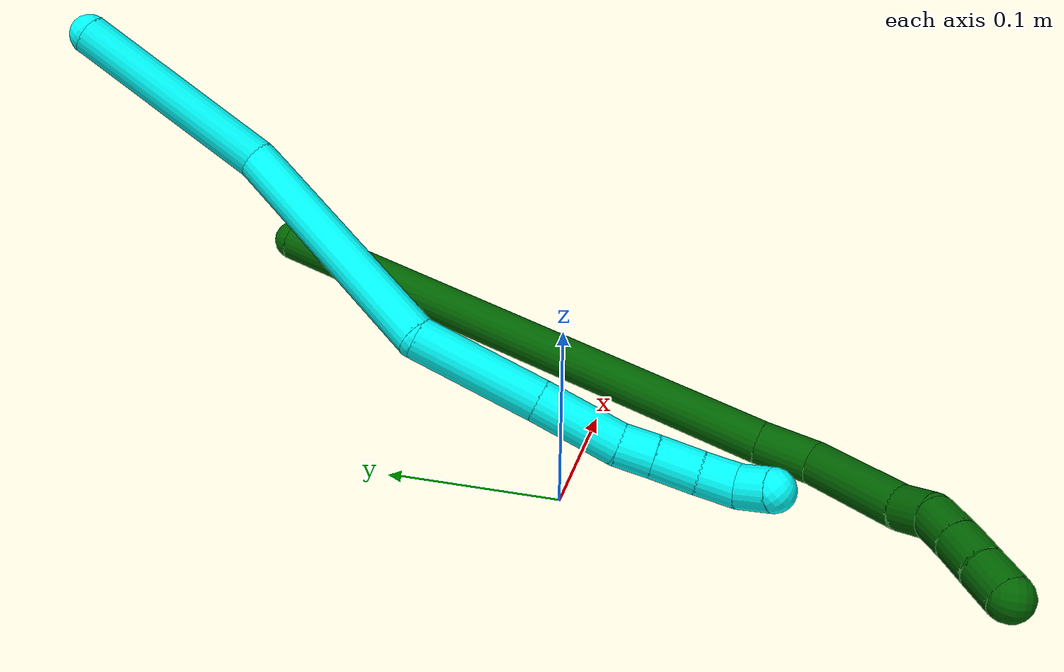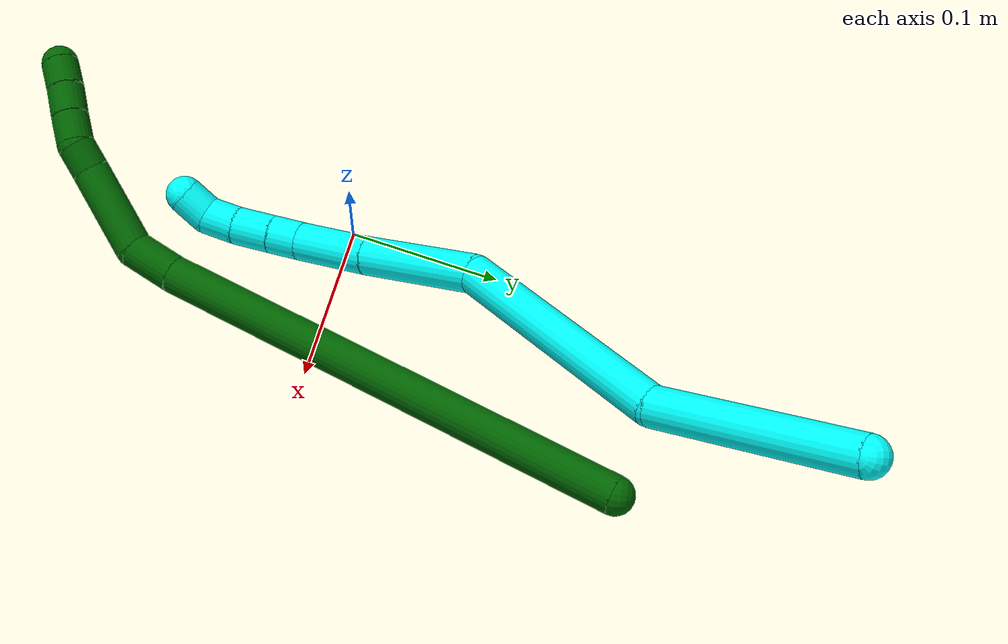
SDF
<sdf version="1.7">
 <world name="default">
  <model name="photoneo_s_sensor">
   <static>1</static>
   <pose>0 0 2 1.57079 1.57079 3.14159</pose>
   <link name="link">
    <inertial><mass>0.1</mass></inertial>
    <sensor name="sensor" type="depth">
     <update_rate>30</update_rate>
     <camera>
      <horizontal_fov>1.22</horizontal_fov>
      <image><width>1920</width><height>1200</height><format>B8G8R8</format></image>
      <clip><near>0.1</near><far>4</far></clip>
      <depth_camera><output>points</output></depth_camera>
     </camera>
     <plugin name="camera_plugin" filename="libgazebo_ros_depth_camera.so">
      <baseline>0.2</baseline>
      <alwaysOn>1</alwaysOn>
      <updateRate>0.0</updateRate>
      <cameraName>camera_ir</cameraName>
      <imageTopicName>/camera/color/image_raw</imageTopicName>
      <cameraInfoTopicName>/camera/color/camera_info</cameraInfoTopicName>
      <depthImageTopicName>/camera/depth/image_raw</depthImageTopicName>
      <depthImageCameraInfoTopicName>/camera/depth/camera_info</depthImageCameraInfoTopicName>
      <pointCloudTopicName>/camera/depth/points</pointCloudTopicName>
      <frameName>fr_optical</frameName>
      <pointCloudCutoff>0.1</pointCloudCutoff>
      <pointCloudCutoffMax>2.0</pointCloudCutoffMax>
      <distortionK1>0</distortionK1>
      <distortionK2>0</distortionK2>
      <distortionK3>0</distortionK3>
      <distortionT1>0</distortionT1>
      <distortionT2>0</distortionT2>
      <CxPrime>0</CxPrime>
      <Cx>0</Cx>
      <Cy>0</Cy>
      <focalLength>0</focalLength>
      <hackBaseline>0</hackBaseline>
     </plugin>
    </sensor>
   </link>
  </model>
  <model name="bin">
   <static>1</static>
   <link name="bottom">
    <collision name="collision-bottom">
     <pose>0 0 -0.01 0 -0 0</pose>
     <geometry><box><size>0.8 0.6 0.02</size></box></geometry>
     <surface>
      <friction><ode><mu>100</mu><mu2>100</mu2></ode></friction>
      <contact><collide_bitmask>65535</collide_bitmask></contact>
     </surface>
    </collision>
   </link>
   <link name="west_wall">
    <collision name="collision-west_wall">
     <pose>-0.41 0 0.1 0 -0 0</pose>
     <geometry><box><size>0.02 0.6 0.2</size></box></geometry>
     <surface>
      <friction><ode><mu>100</mu><mu2>100</mu2></ode></friction>
      <contact><collide_bitmask>65535</collide_bitmask></contact>
     </surface>
    </collision>
   </link>
   <link name="east_wall">
    <collision name="collision-east_wall">
     <pose>0.41 0 0.1 0 -0 0</pose>
     <geometry><box><size>0.02 0.6 0.2</size></box></geometry>
     <surface>
      <friction><ode><mu>100</mu><mu2>100</mu2></ode></friction>
      <contact><collide_bitmask>65535</collide_bitmask></contact>
     </surface>
    </collision>
   </link>
   <link name="south_wall">
    <collision name="collision-south_wall">
     <pose>0 -0.31 0.1 0 -0 0</pose>
     <geometry><box><size>0.8 0.02 0.2</size></box></geometry>
     <surface>
      <friction><ode><mu>100</mu><mu2>100</mu2></ode></friction>
      <contact><collide_bitmask>65535</collide_bitmask></contact>
     </surface>
    </collision>
   </link>
   <link name="north_wall">
    <collision name="collision-north_wall">
     <pose>0 0.31 0.1 0 -0 0</pose>
     <geometry><box><size>0.8 0.02 0.2</size></box></geometry>
     <surface>
      <friction><ode><mu>100</mu><mu2>100</mu2></ode></friction>
      <contact><collide_bitmask>65535</collide_bitmask></contact>
     </surface>
    </collision>
   </link>
  </model>
  <model name="3">
   <static>0</static>
   <link name="3">
    <collision name="collision-cylinder-e_1_1_4">
     <pose>-0.011948 -0.061802 -0.013841 1.79113 -0.186457 -0.23246</pose>
     <geometry><cylinder><radius>0.0125</radius><length>0.128901</length></cylinder></geometry>
     <surface>
      <friction><ode><mu>1.16</mu><mu2>1.16</mu2><slip1>0</slip1><slip2>0</slip2></ode></friction>
      <contact><ode><kp>1e+06</kp><kd>1</kd><max_vel>0</max_vel><min_depth>0.001</min_depth></ode></contact>
     </surface>
    </collision>
    <visual name="visual-cylinder-e_1_1_4">
     <pose>-0.011948 -0.061802 -0.013841 1.79113 -0.186457 -0.23246</pose>
     <geometry><cylinder><radius>0.0125</radius><length>0.128901</length></cylinder></geometry>
     <material><ambient>0.003922 1 0.996078 1</ambient></material>
    </visual>
    <collision name="collision-cylinder-e_2_4_5">
     <pose>-0.011278 -0.199842 -0.035353 1.67106 0.1632 0.180353</pose>
     <geometry><cylinder><radius>0.0125</radius><length>0.155309</length></cylinder></geometry>
     <surface>
      <friction><ode><mu>1.16</mu><mu2>1.16</mu2><slip1>0</slip1><slip2>0</slip2></ode></friction>
      <contact><ode><kp>1e+06</kp><kd>1</kd><max_vel>0</max_vel><min_depth>0.001</min_depth></ode></contact>
     </surface>
    </collision>
    <visual name="visual-cylinder-e_2_4_5">
     <pose>-0.011278 -0.199842 -0.035353 1.67106 0.1632 0.180353</pose>
     <geometry><cylinder><radius>0.0125</radius><length>0.155309</length></cylinder></geometry>
     <material><ambient>0.003922 1 0.996078 1</ambient></material>
    </visual>
    <collision name="collision-cylinder-e_3_5_6">
     <pose>-0.005933 -0.310667 -0.057218 1.96025 -0.192101 -0.285424</pose>
     <geometry><cylinder><radius>0.0125</radius><length>0.076176</length></cylinder></geometry>
     <surface>
      <friction><ode><mu>1.16</mu><mu2>1.16</mu2><slip1>0</slip1><slip2>0</slip2></ode></friction>
      <contact><ode><kp>1e+06</kp><kd>1</kd><max_vel>0</max_vel><min_depth>0.001</min_depth></ode></contact>
     </surface>
    </collision>
    <visual name="visual-cylinder-e_3_5_6">
     <pose>-0.005933 -0.310667 -0.057218 1.96025 -0.192101 -0.285424</pose>
     <geometry><cylinder><radius>0.0125</radius><length>0.076176</length></cylinder></geometry>
     <material><ambient>0.003922 1 0.996078 1</ambient></material>
    </visual>
    <collision name="collision-cylinder-e_4_6_7">
     <pose>-0.017044 -0.368493 -0.080454 1.94185 -0.152765 -0.222867</pose>
     <geometry><cylinder><radius>0.0125</radius><length>0.050458</length></cylinder></geometry>
     <surface>
      <friction><ode><mu>1.16</mu><mu2>1.16</mu2><slip1>0</slip1><slip2>0</slip2></ode></friction>
      <contact><ode><kp>1e+06</kp><kd>1</kd><max_vel>0</max_vel><min_depth>0.001</min_depth></ode></contact>
     </surface>
    </collision>
    <visual name="visual-cylinder-e_4_6_7">
     <pose>-0.017044 -0.368493 -0.080454 1.94185 -0.152765 -0.222867</pose>
     <geometry><cylinder><radius>0.0125</radius><length>0.050458</length></cylinder></geometry>
     <material><ambient>0.003922 1 0.996078 1</ambient></material>
    </visual>
    <collision name="collision-cylinder-e_5_7_8">
     <pose>-0.021966 -0.400433 -0.094931 2.12912 -0.10515 -0.189262</pose>
     <geometry><cylinder><radius>0.0125</radius><length>0.020633</length></cylinder></geometry>
     <surface>
      <friction><ode><mu>1.16</mu><mu2>1.16</mu2><slip1>0</slip1><slip2>0</slip2></ode></friction>
      <contact><ode><kp>1e+06</kp><kd>1</kd><max_vel>0</max_vel><min_depth>0.001</min_depth></ode></contact>
     </surface>
    </collision>
    <visual name="visual-cylinder-e_5_7_8">
     <pose>-0.021966 -0.400433 -0.094931 2.12912 -0.10515 -0.189262</pose>
     <geometry><cylinder><radius>0.0125</radius><length>0.020633</length></cylinder></geometry>
     <material><ambient>0.003922 1 0.996078 1</ambient></material>
    </visual>
    <collision name="collision-cylinder-e_6_8_9">
     <pose>-0.024434 -0.420214 -0.106894 2.10322 -0.107284 -0.18736</pose>
     <geometry><cylinder><radius>0.0125</radius><length>0.025869</length></cylinder></geometry>
     <surface>
      <friction><ode><mu>1.16</mu><mu2>1.16</mu2><slip1>0</slip1><slip2>0</slip2></ode></friction>
      <contact><ode><kp>1e+06</kp><kd>1</kd><max_vel>0</max_vel><min_depth>0.001</min_depth></ode></contact>
     </surface>
    </collision>
    <visual name="visual-cylinder-e_6_8_9">
     <pose>-0.024434 -0.420214 -0.106894 2.10322 -0.107284 -0.18736</pose>
     <geometry><cylinder><radius>0.0125</radius><length>0.025869</length></cylinder></geometry>
     <material><ambient>0.003922 1 0.996078 1</ambient></material>
    </visual>
    <collision name="collision-cylinder-e_7_9_10">
     <pose>-0.025902 -0.440694 -0.119486 2.14375 -0.007408 -0.013595</pose>
     <geometry><cylinder><radius>0.0125</radius><length>0.022373</length></cylinder></geometry>
     <surface>
      <friction><ode><mu>1.16</mu><mu2>1.16</mu2><slip1>0</slip1><slip2>0</slip2></ode></friction>
      <contact><ode><kp>1e+06</kp><kd>1</kd><max_vel>0</max_vel><min_depth>0.001</min_depth></ode></contact>
     </surface>
    </collision>
    <visual name="visual-cylinder-e_7_9_10">
     <pose>-0.025902 -0.440694 -0.119486 2.14375 -0.007408 -0.013595</pose>
     <geometry><cylinder><radius>0.0125</radius><length>0.022373</length></cylinder></geometry>
     <material><ambient>0.003922 1 0.996078 1</ambient></material>
    </visual>
    <collision name="collision-cylinder-e_8_10_2">
     <pose>-0.021694 -0.456169 -0.132445 2.41932 0.436799 1.06251</pose>
     <geometry><cylinder><radius>0.0125</radius><length>0.020282</length></cylinder></geometry>
     <surface>
      <friction><ode><mu>1.16</mu><mu2>1.16</mu2><slip1>0</slip1><slip2>0</slip2></ode></friction>
      <contact><ode><kp>1e+06</kp><kd>1</kd><max_vel>0</max_vel><min_depth>0.001</min_depth></ode></contact>
     </surface>
    </collision>
    <visual name="visual-cylinder-e_8_10_2">
     <pose>-0.021694 -0.456169 -0.132445 2.41932 0.436799 1.06251</pose>
     <geometry><cylinder><radius>0.0125</radius><length>0.020282</length></cylinder></geometry>
     <material><ambient>0.003922 1 0.996078 1</ambient></material>
    </visual>
    <collision name="collision-sphere-2">
     <pose>-0.017404 -0.462243 -0.139339 0 -0 0</pose>
     <geometry><sphere><radius>0.0125</radius></sphere></geometry>
     <surface>
      <friction><ode><mu>1.16</mu><mu2>1.16</mu2><slip1>0</slip1><slip2>0</slip2></ode></friction>
      <contact><ode><kp>1e+06</kp><kd>1</kd><max_vel>0</max_vel><min_depth>0.001</min_depth></ode></contact>
     </surface>
    </collision>
    <visual name="visual-sphere-2">
     <pose>-0.017404 -0.462243 -0.139339 0 -0 0</pose>
     <geometry><sphere><radius>0.0125</radius></sphere></geometry>
     <material><ambient>0.003922 1 0.996078 1</ambient></material>
    </visual>
    <collision name="collision-sphere-10">
     <pose>-0.025985 -0.450094 -0.125551 0 -0 0</pose>
     <geometry><sphere><radius>0.0125</radius></sphere></geometry>
     <surface>
      <friction><ode><mu>1.16</mu><mu2>1.16</mu2><slip1>0</slip1><slip2>0</slip2></ode></friction>
      <contact><ode><kp>1e+06</kp><kd>1</kd><max_vel>0</max_vel><min_depth>0.001</min_depth></ode></contact>
     </surface>
    </collision>
    <visual name="visual-sphere-10">
     <pose>-0.025985 -0.450094 -0.125551 0 -0 0</pose>
     <geometry><sphere><radius>0.0125</radius></sphere></geometry>
     <material><ambient>0.003922 1 0.996078 1</ambient></material>
    </visual>
    <collision name="collision-sphere-9">
     <pose>-0.025819 -0.431294 -0.113422 0 -0 0</pose>
     <geometry><sphere><radius>0.0125</radius></sphere></geometry>
     <surface>
      <friction><ode><mu>1.16</mu><mu2>1.16</mu2><slip1>0</slip1><slip2>0</slip2></ode></friction>
      <contact><ode><kp>1e+06</kp><kd>1</kd><max_vel>0</max_vel><min_depth>0.001</min_depth></ode></contact>
     </surface>
    </collision>
    <visual name="visual-sphere-9">
     <pose>-0.025819 -0.431294 -0.113422 0 -0 0</pose>
     <geometry><sphere><radius>0.0125</radius></sphere></geometry>
     <material><ambient>0.003922 1 0.996078 1</ambient></material>
    </visual>
    <collision name="collision-sphere-4">
     <pose>-0.023895 -0.123604 -0.027683 0 -0 0</pose>
     <geometry><sphere><radius>0.0125</radius></sphere></geometry>
     <surface>
      <friction><ode><mu>1.16</mu><mu2>1.16</mu2><slip1>0</slip1><slip2>0</slip2></ode></friction>
      <contact><ode><kp>1e+06</kp><kd>1</kd><max_vel>0</max_vel><min_depth>0.001</min_depth></ode></contact>
     </surface>
    </collision>
    <visual name="visual-sphere-4">
     <pose>-0.023895 -0.123604 -0.027683 0 -0 0</pose>
     <geometry><sphere><radius>0.0125</radius></sphere></geometry>
     <material><ambient>0.003922 1 0.996078 1</ambient></material>
    </visual>
    <collision name="collision-sphere-1">
     <geometry><sphere><radius>0.0125</radius></sphere></geometry>
     <surface>
      <friction><ode><mu>1.16</mu><mu2>1.16</mu2><slip1>0</slip1><slip2>0</slip2></ode></friction>
      <contact><ode><kp>1e+06</kp><kd>1</kd><max_vel>0</max_vel><min_depth>0.001</min_depth></ode></contact>
     </surface>
    </collision>
    <visual name="visual-sphere-1">
     <geometry><sphere><radius>0.0125</radius></sphere></geometry>
     <material><ambient>0.003922 1 0.996078 1</ambient></material>
    </visual>
    <collision name="collision-sphere-8">
     <pose>-0.023049 -0.409134 -0.100366 0 -0 0</pose>
     <geometry><sphere><radius>0.0125</radius></sphere></geometry>
     <surface>
      <friction><ode><mu>1.16</mu><mu2>1.16</mu2><slip1>0</slip1><slip2>0</slip2></ode></friction>
      <contact><ode><kp>1e+06</kp><kd>1</kd><max_vel>0</max_vel><min_depth>0.001</min_depth></ode></contact>
     </surface>
    </collision>
    <visual name="visual-sphere-8">
     <pose>-0.023049 -0.409134 -0.100366 0 -0 0</pose>
     <geometry><sphere><radius>0.0125</radius></sphere></geometry>
     <material><ambient>0.003922 1 0.996078 1</ambient></material>
    </visual>
    <collision name="collision-sphere-5">
     <pose>0.001339 -0.27608 -0.043022 0 -0 0</pose>
     <geometry><sphere><radius>0.0125</radius></sphere></geometry>
     <surface>
      <friction><ode><mu>1.16</mu><mu2>1.16</mu2><slip1>0</slip1><slip2>0</slip2></ode></friction>
      <contact><ode><kp>1e+06</kp><kd>1</kd><max_vel>0</max_vel><min_depth>0.001</min_depth></ode></contact>
     </surface>
    </collision>
    <visual name="visual-sphere-5">
     <pose>0.001339 -0.27608 -0.043022 0 -0 0</pose>
     <geometry><sphere><radius>0.0125</radius></sphere></geometry>
     <material><ambient>0.003922 1 0.996078 1</ambient></material>
    </visual>
    <collision name="collision-sphere-6">
     <pose>-0.013205 -0.345255 -0.071413 0 -0 0</pose>
     <geometry><sphere><radius>0.0125</radius></sphere></geometry>
     <surface>
      <friction><ode><mu>1.16</mu><mu2>1.16</mu2><slip1>0</slip1><slip2>0</slip2></ode></friction>
      <contact><ode><kp>1e+06</kp><kd>1</kd><max_vel>0</max_vel><min_depth>0.001</min_depth></ode></contact>
     </surface>
    </collision>
    <visual name="visual-sphere-6">
     <pose>-0.013205 -0.345255 -0.071413 0 -0 0</pose>
     <geometry><sphere><radius>0.0125</radius></sphere></geometry>
     <material><ambient>0.003922 1 0.996078 1</ambient></material>
    </visual>
    <collision name="collision-sphere-7">
     <pose>-0.020883 -0.391731 -0.089496 0 -0 0</pose>
     <geometry><sphere><radius>0.0125</radius></sphere></geometry>
     <surface>
      <friction><ode><mu>1.16</mu><mu2>1.16</mu2><slip1>0</slip1><slip2>0</slip2></ode></friction>
      <contact><ode><kp>1e+06</kp><kd>1</kd><max_vel>0</max_vel><min_depth>0.001</min_depth></ode></contact>
     </surface>
    </collision>
    <visual name="visual-sphere-7">
     <pose>-0.020883 -0.391731 -0.089496 0 -0 0</pose>
     <geometry><sphere><radius>0.0125</radius></sphere></geometry>
     <material><ambient>0.003922 1 0.996078 1</ambient></material>
    </visual>
    <inertial>
     <pose>-0.013417 -0.239013 -0.051553 0 -0 0</pose>
     <mass>0.5</mass>
     <inertia>
      <ixx>0.000541</ixx>
      <ixy>0</ixy>
      <ixz>0</ixz>
      <iyy>-0.000108</iyy>
      <iyz>0</iyz>
      <izz>0.000523</izz>
     </inertia>
    </inertial>
   </link>
   <pose>0.083641 0.317374 0.224796 2.37868 -0.404752 -3.14091</pose>
  </model>
  <model name="6">
   <static>0</static>
   <link name="6">
    <collision name="collision-cylinder-e_1_1_4">
     <pose>-0.044264 -0.039773 0.150544 0.258294 -0.276969 -0.036198</pose>
     <geometry><cylinder><radius>0.0125</radius><length>0.323757</length></cylinder></geometry>
     <surface>
      <friction><ode><mu>1.16</mu><mu2>1.16</mu2><slip1>0</slip1><slip2>0</slip2></ode></friction>
      <contact><ode><kp>1e+06</kp><kd>1</kd><max_vel>0</max_vel><min_depth>0.001</min_depth></ode></contact>
     </surface>
    </collision>
    <visual name="visual-cylinder-e_1_1_4">
     <pose>-0.044264 -0.039773 0.150544 0.258294 -0.276969 -0.036198</pose>
     <geometry><cylinder><radius>0.0125</radius><length>0.323757</length></cylinder></geometry>
     <material><ambient>0 0.392157 0.003922 1</ambient></material>
    </visual>
    <collision name="collision-cylinder-e_2_4_5">
     <pose>-0.09496 -0.082604 0.316007 0.202164 -0.399558 -0.041068</pose>
     <geometry><cylinder><radius>0.0125</radius><length>0.033064</length></cylinder></geometry>
     <surface>
      <friction><ode><mu>1.16</mu><mu2>1.16</mu2><slip1>0</slip1><slip2>0</slip2></ode></friction>
      <contact><ode><kp>1e+06</kp><kd>1</kd><max_vel>0</max_vel><min_depth>0.001</min_depth></ode></contact>
     </surface>
    </collision>
    <visual name="visual-cylinder-e_2_4_5">
     <pose>-0.09496 -0.082604 0.316007 0.202164 -0.399558 -0.041068</pose>
     <geometry><cylinder><radius>0.0125</radius><length>0.033064</length></cylinder></geometry>
     <material><ambient>0 0.392157 0.003922 1</ambient></material>
    </visual>
    <collision name="collision-cylinder-e_3_5_6">
     <pose>-0.124784 -0.092071 0.349481 0.332606 -0.87264 -0.156219</pose>
     <geometry><cylinder><radius>0.0125</radius><length>0.061076</length></cylinder></geometry>
     <surface>
      <friction><ode><mu>1.16</mu><mu2>1.16</mu2><slip1>0</slip1><slip2>0</slip2></ode></friction>
      <contact><ode><kp>1e+06</kp><kd>1</kd><max_vel>0</max_vel><min_depth>0.001</min_depth></ode></contact>
     </surface>
    </collision>
    <visual name="visual-cylinder-e_3_5_6">
     <pose>-0.124784 -0.092071 0.349481 0.332606 -0.87264 -0.156219</pose>
     <geometry><cylinder><radius>0.0125</radius><length>0.061076</length></cylinder></geometry>
     <material><ambient>0 0.392157 0.003922 1</ambient></material>
    </visual>
    <collision name="collision-cylinder-e_4_6_7">
     <pose>-0.156425 -0.098642 0.37382 0.027886 -0.958989 -0.014501</pose>
     <geometry><cylinder><radius>0.0125</radius><length>0.020153</length></cylinder></geometry>
     <surface>
      <friction><ode><mu>1.16</mu><mu2>1.16</mu2><slip1>0</slip1><slip2>0</slip2></ode></friction>
      <contact><ode><kp>1e+06</kp><kd>1</kd><max_vel>0</max_vel><min_depth>0.001</min_depth></ode></contact>
     </surface>
    </collision>
    <visual name="visual-cylinder-e_4_6_7">
     <pose>-0.156425 -0.098642 0.37382 0.027886 -0.958989 -0.014501</pose>
     <geometry><cylinder><radius>0.0125</radius><length>0.020153</length></cylinder></geometry>
     <material><ambient>0 0.392157 0.003922 1</ambient></material>
    </visual>
    <collision name="collision-cylinder-e_5_7_8">
     <pose>-0.173448 -0.102945 0.38356 0.808496 -0.992569 -0.455277</pose>
     <geometry><cylinder><radius>0.0125</radius><length>0.020954</length></cylinder></geometry>
     <surface>
      <friction><ode><mu>1.16</mu><mu2>1.16</mu2><slip1>0</slip1><slip2>0</slip2></ode></friction>
      <contact><ode><kp>1e+06</kp><kd>1</kd><max_vel>0</max_vel><min_depth>0.001</min_depth></ode></contact>
     </surface>
    </collision>
    <visual name="visual-cylinder-e_5_7_8">
     <pose>-0.173448 -0.102945 0.38356 0.808496 -0.992569 -0.455277</pose>
     <geometry><cylinder><radius>0.0125</radius><length>0.020954</length></cylinder></geometry>
     <material><ambient>0 0.392157 0.003922 1</ambient></material>
    </visual>
    <collision name="collision-cylinder-e_6_8_9">
     <pose>-0.190874 -0.111714 0.391231 0.894049 -0.969551 -0.494647</pose>
     <geometry><cylinder><radius>0.0125</radius><length>0.020985</length></cylinder></geometry>
     <surface>
      <friction><ode><mu>1.16</mu><mu2>1.16</mu2><slip1>0</slip1><slip2>0</slip2></ode></friction>
      <contact><ode><kp>1e+06</kp><kd>1</kd><max_vel>0</max_vel><min_depth>0.001</min_depth></ode></contact>
     </surface>
    </collision>
    <visual name="visual-cylinder-e_6_8_9">
     <pose>-0.190874 -0.111714 0.391231 0.894049 -0.969551 -0.494647</pose>
     <geometry><cylinder><radius>0.0125</radius><length>0.020985</length></cylinder></geometry>
     <material><ambient>0 0.392157 0.003922 1</ambient></material>
    </visual>
    <collision name="collision-cylinder-e_7_9_2">
     <pose>-0.207376 -0.121025 0.399018 0.855428 -0.901843 -0.434478</pose>
     <geometry><cylinder><radius>0.0125</radius><length>0.020011</length></cylinder></geometry>
     <surface>
      <friction><ode><mu>1.16</mu><mu2>1.16</mu2><slip1>0</slip1><slip2>0</slip2></ode></friction>
      <contact><ode><kp>1e+06</kp><kd>1</kd><max_vel>0</max_vel><min_depth>0.001</min_depth></ode></contact>
     </surface>
    </collision>
    <visual name="visual-cylinder-e_7_9_2">
     <pose>-0.207376 -0.121025 0.399018 0.855428 -0.901843 -0.434478</pose>
     <geometry><cylinder><radius>0.0125</radius><length>0.020011</length></cylinder></geometry>
     <material><ambient>0 0.392157 0.003922 1</ambient></material>
    </visual>
    <collision name="collision-sphere-2">
     <pose>-0.215225 -0.125709 0.403088 0 -0 0</pose>
     <geometry><sphere><radius>0.0125</radius></sphere></geometry>
     <surface>
      <friction><ode><mu>1.16</mu><mu2>1.16</mu2><slip1>0</slip1><slip2>0</slip2></ode></friction>
      <contact><ode><kp>1e+06</kp><kd>1</kd><max_vel>0</max_vel><min_depth>0.001</min_depth></ode></contact>
     </surface>
    </collision>
    <visual name="visual-sphere-2">
     <pose>-0.215225 -0.125709 0.403088 0 -0 0</pose>
     <geometry><sphere><radius>0.0125</radius></sphere></geometry>
     <material><ambient>0 0.392157 0.003922 1</ambient></material>
    </visual>
    <collision name="collision-sphere-9">
     <pose>-0.199527 -0.116341 0.394948 0 -0 0</pose>
     <geometry><sphere><radius>0.0125</radius></sphere></geometry>
     <surface>
      <friction><ode><mu>1.16</mu><mu2>1.16</mu2><slip1>0</slip1><slip2>0</slip2></ode></friction>
      <contact><ode><kp>1e+06</kp><kd>1</kd><max_vel>0</max_vel><min_depth>0.001</min_depth></ode></contact>
     </surface>
    </collision>
    <visual name="visual-sphere-9">
     <pose>-0.199527 -0.116341 0.394948 0 -0 0</pose>
     <geometry><sphere><radius>0.0125</radius></sphere></geometry>
     <material><ambient>0 0.392157 0.003922 1</ambient></material>
    </visual>
    <collision name="collision-sphere-4">
     <pose>-0.088529 -0.079546 0.301088 0 -0 0</pose>
     <geometry><sphere><radius>0.0125</radius></sphere></geometry>
     <surface>
      <friction><ode><mu>1.16</mu><mu2>1.16</mu2><slip1>0</slip1><slip2>0</slip2></ode></friction>
      <contact><ode><kp>1e+06</kp><kd>1</kd><max_vel>0</max_vel><min_depth>0.001</min_depth></ode></contact>
     </surface>
    </collision>
    <visual name="visual-sphere-4">
     <pose>-0.088529 -0.079546 0.301088 0 -0 0</pose>
     <geometry><sphere><radius>0.0125</radius></sphere></geometry>
     <material><ambient>0 0.392157 0.003922 1</ambient></material>
    </visual>
    <collision name="collision-sphere-1">
     <geometry><sphere><radius>0.0125</radius></sphere></geometry>
     <surface>
      <friction><ode><mu>1.16</mu><mu2>1.16</mu2><slip1>0</slip1><slip2>0</slip2></ode></friction>
      <contact><ode><kp>1e+06</kp><kd>1</kd><max_vel>0</max_vel><min_depth>0.001</min_depth></ode></contact>
     </surface>
    </collision>
    <visual name="visual-sphere-1">
     <geometry><sphere><radius>0.0125</radius></sphere></geometry>
     <material><ambient>0 0.392157 0.003922 1</ambient></material>
    </visual>
    <collision name="collision-sphere-8">
     <pose>-0.182222 -0.107087 0.387514 0 -0 0</pose>
     <geometry><sphere><radius>0.0125</radius></sphere></geometry>
     <surface>
      <friction><ode><mu>1.16</mu><mu2>1.16</mu2><slip1>0</slip1><slip2>0</slip2></ode></friction>
      <contact><ode><kp>1e+06</kp><kd>1</kd><max_vel>0</max_vel><min_depth>0.001</min_depth></ode></contact>
     </surface>
    </collision>
    <visual name="visual-sphere-8">
     <pose>-0.182222 -0.107087 0.387514 0 -0 0</pose>
     <geometry><sphere><radius>0.0125</radius></sphere></geometry>
     <material><ambient>0 0.392157 0.003922 1</ambient></material>
    </visual>
    <collision name="collision-sphere-5">
     <pose>-0.101391 -0.085662 0.330927 0 -0 0</pose>
     <geometry><sphere><radius>0.0125</radius></sphere></geometry>
     <surface>
      <friction><ode><mu>1.16</mu><mu2>1.16</mu2><slip1>0</slip1><slip2>0</slip2></ode></friction>
      <contact><ode><kp>1e+06</kp><kd>1</kd><max_vel>0</max_vel><min_depth>0.001</min_depth></ode></contact>
     </surface>
    </collision>
    <visual name="visual-sphere-5">
     <pose>-0.101391 -0.085662 0.330927 0 -0 0</pose>
     <geometry><sphere><radius>0.0125</radius></sphere></geometry>
     <material><ambient>0 0.392157 0.003922 1</ambient></material>
    </visual>
    <collision name="collision-sphere-6">
     <pose>-0.148177 -0.098481 0.368035 0 -0 0</pose>
     <geometry><sphere><radius>0.0125</radius></sphere></geometry>
     <surface>
      <friction><ode><mu>1.16</mu><mu2>1.16</mu2><slip1>0</slip1><slip2>0</slip2></ode></friction>
      <contact><ode><kp>1e+06</kp><kd>1</kd><max_vel>0</max_vel><min_depth>0.001</min_depth></ode></contact>
     </surface>
    </collision>
    <visual name="visual-sphere-6">
     <pose>-0.148177 -0.098481 0.368035 0 -0 0</pose>
     <geometry><sphere><radius>0.0125</radius></sphere></geometry>
     <material><ambient>0 0.392157 0.003922 1</ambient></material>
    </visual>
    <collision name="collision-sphere-7">
     <pose>-0.164674 -0.098804 0.379605 0 -0 0</pose>
     <geometry><sphere><radius>0.0125</radius></sphere></geometry>
     <surface>
      <friction><ode><mu>1.16</mu><mu2>1.16</mu2><slip1>0</slip1><slip2>0</slip2></ode></friction>
      <contact><ode><kp>1e+06</kp><kd>1</kd><max_vel>0</max_vel><min_depth>0.001</min_depth></ode></contact>
     </surface>
    </collision>
    <visual name="visual-sphere-7">
     <pose>-0.164674 -0.098804 0.379605 0 -0 0</pose>
     <geometry><sphere><radius>0.0125</radius></sphere></geometry>
     <material><ambient>0 0.392157 0.003922 1</ambient></material>
    </visual>
    <inertial>
     <pose>-0.080068 -0.060285 0.224597 0 -0 0</pose>
     <mass>0.5</mass>
     <inertia>
      <ixx>0.002632</ixx>
      <ixy>0</ixy>
      <ixz>0</ixz>
      <iyy>0.00267</iyy>
      <iyz>0</iyz>
      <izz>0.001537</izz>
     </inertia>
    </inertial>
   </link>
   <pose>0.124762 0.208991 0.089115 1.69836 0.405907 0.231901</pose>
  </model>
 </world>
</sdf>
